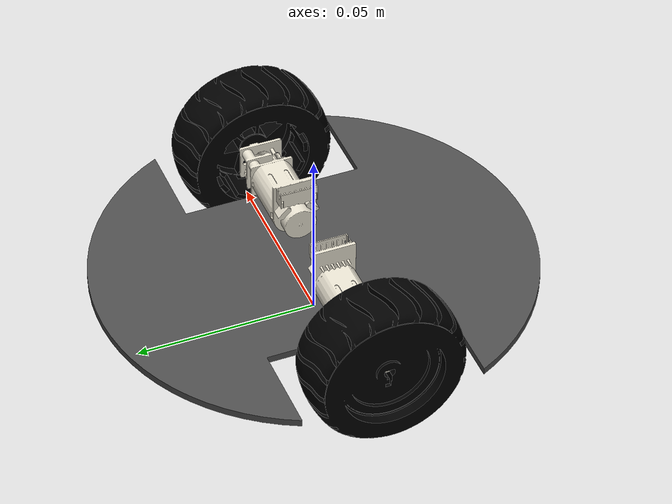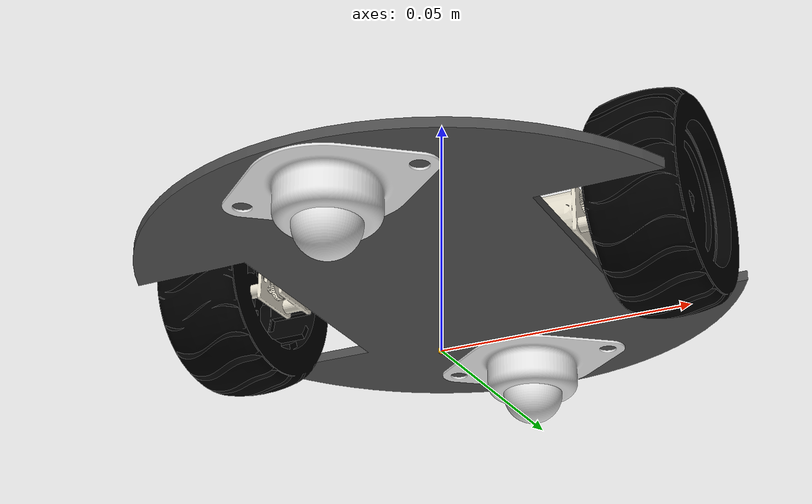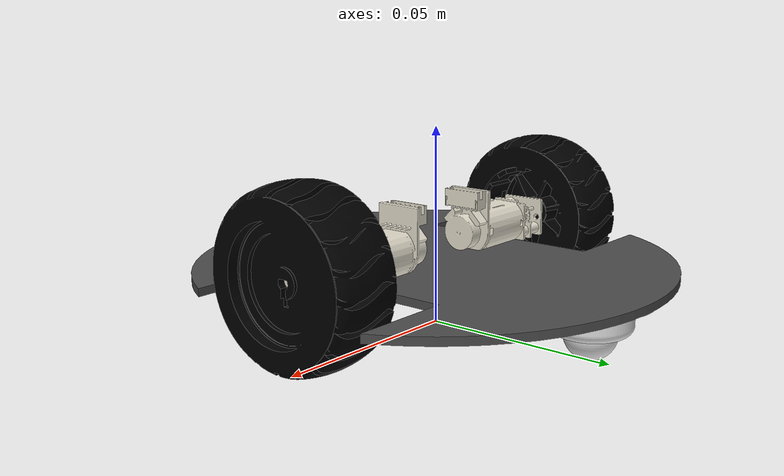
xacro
<?xml version="1.0"?>

<robot name="tw_base_v1" xmlns:xacro="http://ros.org/wiki/xacro">

<xacro:include filename="$(find os_robots_description)/urdf/tw_base_v2.gazebo.xacro"/>

<link name="base_footprint"> <!--Dummy link-->
    <visual>
        <origin xyz="0 0 0" rpy="0 -0 0"/>
        <geometry>
            <box size="0.001 0.001 0.001" />
        </geometry>
    </visual>
</link>

<joint name="base_footprint_joint" type="fixed">
    <origin xyz="0 0 0" rpy="0 0 0" />
    <parent link="base_footprint"/>
    <child link="part_1" />
</joint>

<link name="part_1">
<visual>
<origin xyz="7.69697e-18 -2.36273e-17 0.0155005" rpy="1.69309e-15 6.93889e-18 -6.04901e-16" />
<geometry>
<mesh filename="package://os_robots_description/meshes/backup/v2/part_1.stl"/>
</geometry>
<material name="part_1_material">
<color rgba="0.301961 0.301961 0.301961 1.0"/>
</material>
</visual>
<collision>
<origin xyz="7.69697e-18 -2.36273e-17 0.0155005" rpy="1.69309e-15 6.93889e-18 -6.04901e-16" />
<geometry>
<mesh filename="package://os_robots_description/meshes/backup/v2/part_1.stl"/>
</geometry>
<material name="part_1_material">
<color rgba="0.301961 0.301961 0.301961 1.0"/>
</material>
</collision>
<inertial>
<origin xyz="2.65978e-17 -2.61709e-10 0.0155005" rpy="0 0 0"/>
<mass value="0.0458371" />
<inertia ixx="5.19708e-05" ixy="1.67709e-20"  ixz="-1.68027e-22" iyy="2.42458e-05" iyz="-1.20016e-14" izz="7.6186e-05" />
</inertial>
</link>

<link name="n@)">
<visual>
<origin xyz="0.127619 0.231707 0.00135678" rpy="3.14159 2.65008e-31 1.18048e-32" />
<geometry>
<mesh filename="package://os_robots_description/meshes/backup/v2/n@).stl"/>
</geometry>
<material name="n@)_material">
<color rgba="0.901961 0.878431 0.811765 1.0"/>
</material>
</visual>
<collision>
<origin xyz="0.127619 0.231707 0.00135678" rpy="3.14159 2.65008e-31 1.18048e-32" />
<geometry>
<mesh filename="package://os_robots_description/meshes/backup/v2/n@).stl"/>
</geometry>
<material name="n@)_material">
<color rgba="0.901961 0.878431 0.811765 1.0"/>
</material>
</collision>
<inertial>
<origin xyz="0.00683686 2.68432e-05 -0.0055173" rpy="0 0 0"/>
<mass value="0.0202353" />
<inertia ixx="3.93877e-07" ixy="7.1532e-09"  ixz="1.17044e-07" iyy="1.68208e-06" iyz="6.74559e-09" izz="1.66679e-06" />
</inertial>
</link>

<link name="n20-43mm-d-shaft-wheel-1.snapshot.9">
<visual>
<origin xyz="-0.0365766 0.030151 0.0172766" rpy="3.14159 4.02865e-34 0" />
<geometry>
<mesh filename="package://os_robots_description/meshes/backup/v2/n20-43mm-d-shaft-wheel-1.snapshot.9.stl"/>
</geometry>
<material name="n20-43mm-d-shaft-wheel-1.snapshot.9_material">
<color rgba="0 0 0 1.0"/>
</material>
</visual>
<collision>
<origin xyz="-0.0365766 0.030151 0.0172766" rpy="3.14159 4.02865e-34 0" />
<geometry>
<mesh filename="package://os_robots_description/meshes/backup/v2/n20-43mm-d-shaft-wheel-1.snapshot.9.stl"/>
</geometry>
<material name="n20-43mm-d-shaft-wheel-1.snapshot.9_material">
<color rgba="0 0 0 1.0"/>
</material>
</collision>
<inertial>
<origin xyz="-8.41996e-08 4.29217e-05 -0.00381857" rpy="0 0 0"/>
<mass value="0.0222369" />
<inertia ixx="3.68546e-06" ixy="4.66188e-10"  ixz="-2.19354e-10" iyy="3.67087e-06" iyz="-1.16215e-10" izz="6.30613e-06" />
</inertial>
</link>

<joint name="RM_Revolute" type="continuous">
<origin xyz="-0.0199 4.29939e-16 -0.005" rpy="-1.5708 1.79194e-16 1.5708" />
<parent link="n@)" />
<child link="n20-43mm-d-shaft-wheel-1.snapshot.9" />
<axis xyz="0 0 1"/>
<limit effort="100" velocity="100" />
<joint_properties friction="0.0"/>
</joint>

<joint name="RM_Fastened" type="fixed">
<origin xyz="0.03 -2.77556e-17 0.0165005" rpy="3.14159 -6.93889e-18 3.14159" />
<parent link="part_1" />
<child link="n@)" />
<axis xyz="0 0 1"/>
<limit effort="1" velocity="20" />
<joint_properties friction="0.0"/>
</joint>

<!-- Transmission is important to link the joints and the controller -->
<transmission name="RM_Revolute_trans">
    <type>transmission_interface/SimpleTransmission</type>
    <joint name="RM_Revolute">
        <hardwareInterface>hardware_interface/VelocityJointInterface</hardwareInterface>
    </joint>
    <actuator name="RM_Revolute_motor">
        <hardwareInterface>VelocityJointInterface</hardwareInterface>
        <mechanicalReduction>1</mechanicalReduction>
    </actuator>
</transmission>

<link name="n@)_2">
<visual>
<origin xyz="0.127619 0.231707 0.00135678" rpy="3.14159 2.65008e-31 1.17879e-32" />
<geometry>
<mesh filename="package://os_robots_description/meshes/backup/v2/n@).stl"/>
</geometry>
<material name="n@)_material">
<color rgba="0.901961 0.878431 0.811765 1.0"/>
</material>
</visual>
<collision>
<origin xyz="0.127619 0.231707 0.00135678" rpy="3.14159 2.65008e-31 1.17879e-32" />
<geometry>
<mesh filename="package://os_robots_description/meshes/backup/v2/n@).stl"/>
</geometry>
<material name="n@)_material">
<color rgba="0.901961 0.878431 0.811765 1.0"/>
</material>
</collision>
<inertial>
<origin xyz="0.00683686 2.68432e-05 -0.0055173" rpy="0 0 0"/>
<mass value="0.0202353" />
<inertia ixx="3.93877e-07" ixy="7.1532e-09"  ixz="1.17044e-07" iyy="1.68208e-06" iyz="6.74559e-09" izz="1.66679e-06" />
</inertial>
</link>

<link name="n20-43mm-d-shaft-wheel-1.snapshot.9_2">
<visual>
<origin xyz="-0.0365766 0.030151 0.0172766" rpy="3.14159 4.5101e-33 0" />
<geometry>
<mesh filename="package://os_robots_description/meshes/backup/v2/n20-43mm-d-shaft-wheel-1.snapshot.9.stl"/>
</geometry>
<material name="n20-43mm-d-shaft-wheel-1.snapshot.9_material">
<color rgba="0 0 0 1.0"/>
</material>
</visual>
<collision>
<origin xyz="-0.0365766 0.030151 0.0172766" rpy="3.14159 4.5101e-33 0" />
<geometry>
<mesh filename="package://os_robots_description/meshes/backup/v2/n20-43mm-d-shaft-wheel-1.snapshot.9.stl"/>
</geometry>
<material name="n20-43mm-d-shaft-wheel-1.snapshot.9_material">
<color rgba="0 0 0 1.0"/>
</material>
</collision>
<inertial>
<origin xyz="-8.41996e-08 4.29217e-05 -0.00381857" rpy="0 0 0"/>
<mass value="0.0222369" />
<inertia ixx="3.68546e-06" ixy="4.66188e-10"  ixz="-2.19354e-10" iyy="3.67087e-06" iyz="-1.16215e-10" izz="6.30613e-06" />
</inertial>
</link>

<joint name="LM_Revolute" type="continuous">
<origin xyz="-0.0199 4.26816e-16 -0.005" rpy="-1.5708 3.59605e-16 1.5708" />
<parent link="n@)_2" />
<child link="n20-43mm-d-shaft-wheel-1.snapshot.9_2" />
<axis xyz="0 0 -1"/>
<limit effort="100" velocity="100"/>
<joint_properties friction="0.0"/>
</joint>

<joint name="LM_Fastened" type="fixed">
<origin xyz="-0.03 0 0.0165005" rpy="-3.14159 6.93889e-18 -6.04901e-16" />
<parent link="part_1" />
<child link="n@)_2" />
<axis xyz="0 0 1"/>
<limit effort="1" velocity="20" />
<joint_properties friction="0.0"/>
</joint>

<!-- Transmission is important to link the joints and the controller -->
<transmission name="LM_Revolute_trans">
    <type>transmission_interface/SimpleTransmission</type>
    <joint name="LM_Revolute">
        <hardwareInterface>hardware_interface/VelocityJointInterface</hardwareInterface>
    </joint>
    <actuator name="LM_Revolute_motor">
        <hardwareInterface>VelocityJointInterface</hardwareInterface>
        <mechanicalReduction>1</mechanicalReduction>
    </actuator>
</transmission>

<link name="wheel''s_body">
<visual>
<origin xyz="1.54074e-33 0 0" rpy="-1.5708 -0 -1.17482e-32" />
<geometry>
<mesh filename="package://os_robots_description/meshes/backup/v2/wheel''s_body.stl"/>
</geometry>
<material name="wheel''s_body_material">
<color rgba="0.901961 0.901961 0.901961 1.0"/>
</material>
</visual>
<collision>
<origin xyz="1.54074e-33 0 0" rpy="-1.5708 -0 -1.17482e-32" />
<geometry>
<mesh filename="package://os_robots_description/meshes/backup/v2/wheel''s_body.stl"/>
</geometry>
<material name="wheel''s_body_material">
<color rgba="0.901961 0.901961 0.901961 1.0"/>
</material>
</collision>
<inertial>
<origin xyz="2.34209e-10 1.97015e-08 -0.00333562" rpy="0 0 0"/>
<mass value="0.0131095" />
<inertia ixx="5.28777e-07" ixy="-2.10565e-14"  ixz="-1.10312e-14" iyy="6.63513e-07" iyz="9.57429e-13" izz="1.06485e-06" />
</inertial>
</link>

<link name="ball">
<visual>
<origin xyz="3.08149e-33 0 0" rpy="0 -0 1.17482e-32" />
<geometry>
<mesh filename="package://os_robots_description/meshes/backup/v2/ball.stl"/>
</geometry>
<material name="ball_material">
<color rgba="0.901961 0.901961 0.901961 1.0"/>
</material>
</visual>
<collision>
<origin xyz="3.08149e-33 0 0" rpy="0 -0 1.17482e-32" />
<geometry>
<mesh filename="package://os_robots_description/meshes/backup/v2/ball.stl"/>
</geometry>
<material name="ball_material">
<color rgba="0.901961 0.901961 0.901961 1.0"/>
</material>
</collision>
<inertial>
<origin xyz="1.46269e-19 2.68691e-35 0" rpy="0 0 0"/>
<mass value="0.00838007" />
<inertia ixx="1.36015e-07" ixy="3.19585e-39"  ixz="0" iyy="1.36015e-07" iyz="0" izz="1.36015e-07" />
</inertial>
</link>

<joint name="CbB_Fastened" type="fixed">
<origin xyz="3.08149e-33 0 -0.007826" rpy="3.14159 -0 -1.17482e-32" />
<parent link="wheel''s_body" />
<child link="ball" />
<axis xyz="0 0 1"/>
<limit effort="1" velocity="20" />
<joint_properties friction="0.0"/>
</joint>

<joint name="CB_Fastened" type="fixed">
<origin xyz="3.48958e-17 0.0449755 0.0144995" rpy="1.69309e-15 6.93889e-18 -6.04901e-16" />
<parent link="part_1" />
<child link="wheel''s_body" />
<axis xyz="0 0 1"/>
<limit effort="1" velocity="20" />
<joint_properties friction="0.0"/>
</joint>

<link name="wheel''s_body_2">
<visual>
<origin xyz="3.08149e-33 0 0" rpy="-1.5708 -0 -1.17482e-32" />
<geometry>
<mesh filename="package://os_robots_description/meshes/backup/v2/wheel''s_body.stl"/>
</geometry>
<material name="wheel''s_body_material">
<color rgba="0.901961 0.901961 0.901961 1.0"/>
</material>
</visual>
<collision>
<origin xyz="3.08149e-33 0 0" rpy="-1.5708 -0 -1.17482e-32" />
<geometry>
<mesh filename="package://os_robots_description/meshes/backup/v2/wheel''s_body.stl"/>
</geometry>
<material name="wheel''s_body_material">
<color rgba="0.901961 0.901961 0.901961 1.0"/>
</material>
</collision>
<inertial>
<origin xyz="2.34209e-10 1.97015e-08 -0.00333562" rpy="0 0 0"/>
<mass value="0.0131095" />
<inertia ixx="5.28777e-07" ixy="-2.10565e-14"  ixz="-1.10312e-14" iyy="6.63513e-07" iyz="9.57429e-13" izz="1.06485e-06" />
</inertial>
</link>

<link name="ball_2">
<visual>
<origin xyz="1.54074e-33 0 0" rpy="0 -0 1.17482e-32" />
<geometry>
<mesh filename="package://os_robots_description/meshes/backup/v2/ball.stl"/>
</geometry>
<material name="ball_material">
<color rgba="0.901961 0.901961 0.901961 1.0"/>
</material>
</visual>
<collision>
<origin xyz="1.54074e-33 0 0" rpy="0 -0 1.17482e-32" />
<geometry>
<mesh filename="package://os_robots_description/meshes/backup/v2/ball.stl"/>
</geometry>
<material name="ball_material">
<color rgba="0.901961 0.901961 0.901961 1.0"/>
</material>
</collision>
<inertial>
<origin xyz="1.46269e-19 2.68691e-35 0" rpy="0 0 0"/>
<mass value="0.00838007" />
<inertia ixx="1.36015e-07" ixy="3.19585e-39"  ixz="0" iyy="1.36015e-07" iyz="0" izz="1.36015e-07" />
</inertial>
</link>

<joint name="CbF_Fastened" type="fixed">
<origin xyz="1.54074e-33 0 -0.007826" rpy="3.14159 -0 -1.17482e-32" />
<parent link="wheel''s_body_2" />
<child link="ball_2" />
<axis xyz="0 0 1"/>
<limit effort="1" velocity="20" />
<joint_properties friction="0.0"/>
</joint>

<joint name="CF_Fastened" type="fixed">
<origin xyz="-1.9531e-17 -0.0450007 0.0144995" rpy="1.69309e-15 6.93889e-18 -6.04901e-16" />
<parent link="part_1" />
<child link="wheel''s_body_2" />
<axis xyz="0 0 1"/>
<limit effort="1" velocity="20" />
<joint_properties friction="0.0"/>
</joint>

</robot>
